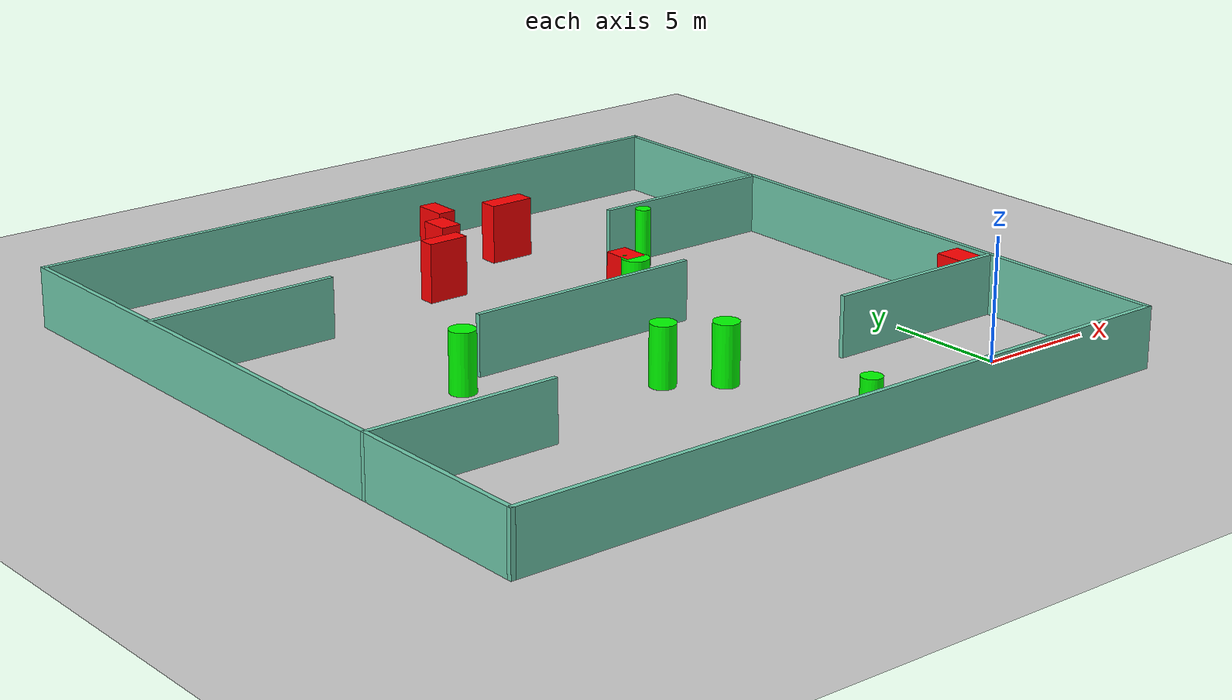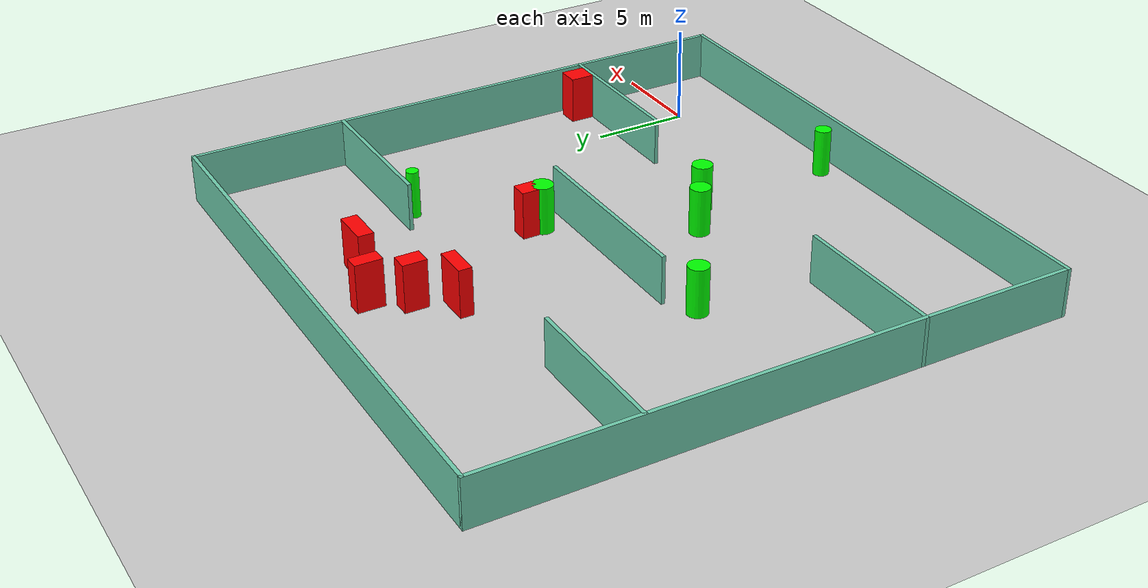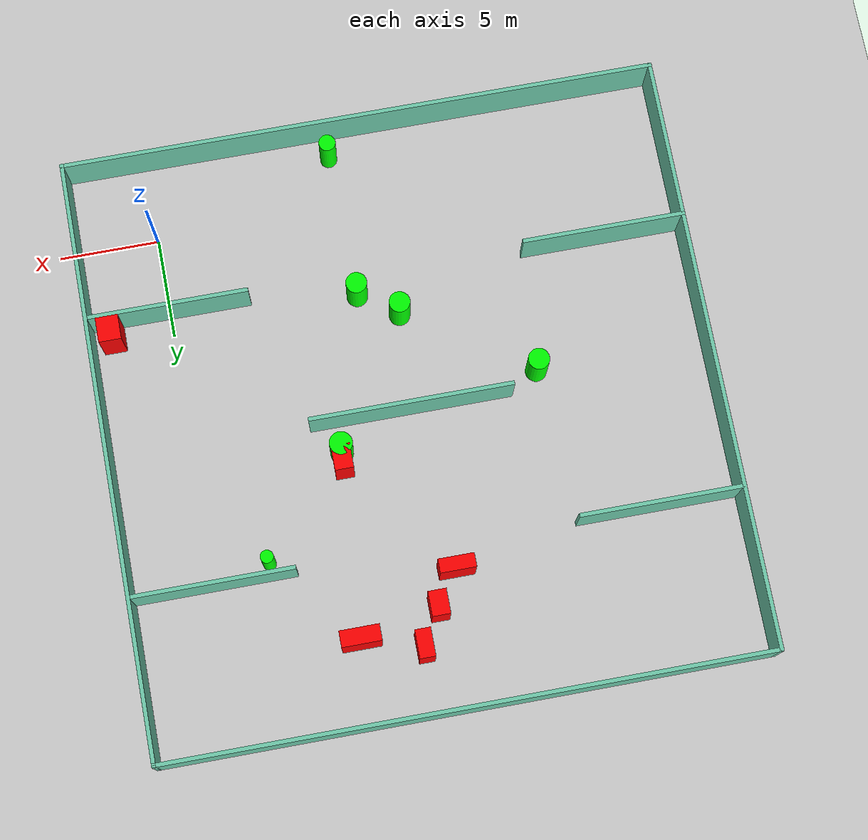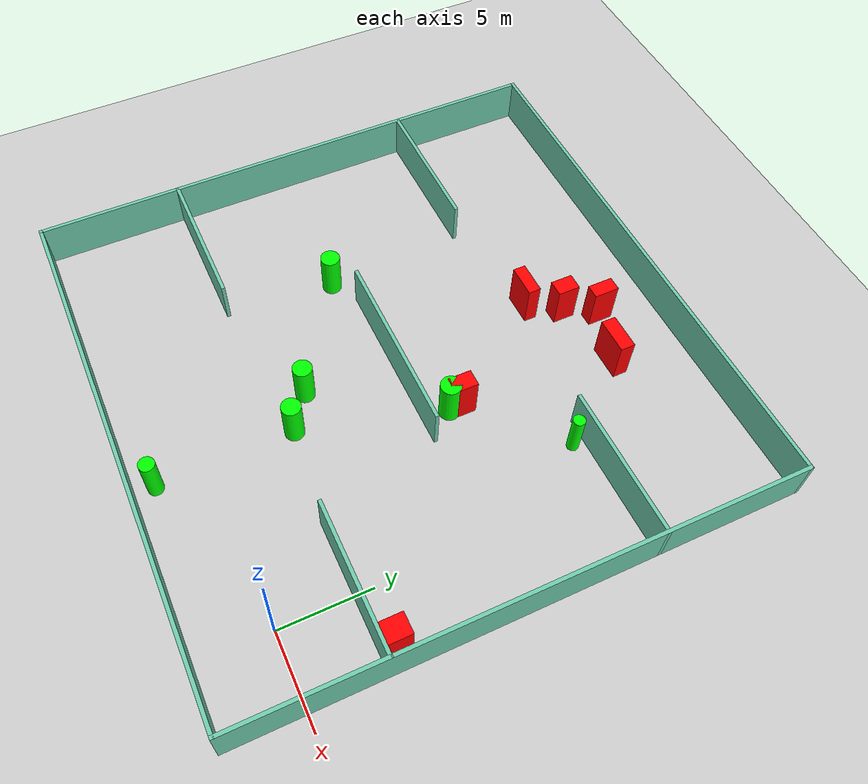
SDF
<sdf version="1.7">
 <world name="default">
  <light name="sun" type="directional">
   <pose>0 0 10 0 -0 0</pose>
   <diffuse>0.8 0.8 0.8 1</diffuse>
   <specular>0.2 0.2 0.2 1</specular>
   <attenuation>
    <range>1000</range>
    <constant>0.9</constant>
    <linear>0.01</linear>
    <quadratic>0.001</quadratic>
   </attenuation>
   <direction>-0.5 0.1 -0.9</direction>
   <spot><inner_angle>0</inner_angle><outer_angle>0</outer_angle><falloff>0</falloff></spot>
  </light>
  <model name="ground_plane">
   <static>1</static>
   <link name="link">
    <collision name="collision">
     <geometry><plane><normal>0 0 1</normal><size>100 100</size></plane></geometry>
     <surface>
      <contact><collide_bitmask>65535</collide_bitmask></contact>
      <friction><ode><mu>100</mu><mu2>50</mu2></ode></friction>
     </surface>
    </collision>
    <visual name="visual">
     <cast_shadows>0</cast_shadows>
     <geometry><plane><normal>0 0 1</normal><size>100 100</size></plane></geometry>
     <material>
      <script><uri>file://media/materials/scripts/gazebo.material</uri><name>Gazebo/Grey</name></script>
     </material>
    </visual>
   </link>
  </model>
  <gravity>0 0 -9.8</gravity>
  <magnetic_field>6e-06 2.3e-05 -4.2e-05</magnetic_field>
  <atmosphere type="adiabatic"/>
  <physics type="ode">
   <max_step_size>0.001</max_step_size>
   <real_time_factor>1</real_time_factor>
   <real_time_update_rate>1000</real_time_update_rate>
  </physics>
  <scene><ambient>0.4 0.4 0.4 1</ambient><background>0.7 0.7 0.7 1</background><shadows>1</shadows></scene>
  <spherical_coordinates>
   <surface_model>EARTH_WGS84</surface_model>
   <latitude_deg>0</latitude_deg>
   <longitude_deg>0</longitude_deg>
   <elevation>0</elevation>
   <heading_deg>0</heading_deg>
  </spherical_coordinates>
  <model name="my_base_walls">
   <link name="Wall_10">
    <collision name="Wall_10_Collision">
     <geometry><box><size>8.2 0.2 2.5</size></box></geometry>
     <pose>0 0 1.25 0 -0 0</pose>
    </collision>
    <visual name="Wall_10_Visual">
     <pose>0 0 1.25 0 -0 0</pose>
     <geometry><box><size>8.2 0.2 2.5</size></box></geometry>
     <material>
      <script><uri>file://media/materials/scripts/gazebo.material</uri><name>Gazebo/Grey</name></script>
      <ambient>0.435294 0.796078 0.67451 1</ambient>
     </material>
     <meta><layer>0</layer></meta>
    </visual>
    <pose>-11 -7 0 0 -0 0</pose>
   </link>
   <link name="Wall_12">
    <collision name="Wall_12_Collision">
     <geometry><box><size>8.2 0.2 2.5</size></box></geometry>
     <pose>0 0 1.25 0 -0 0</pose>
    </collision>
    <visual name="Wall_12_Visual">
     <pose>0 0 1.25 0 -0 0</pose>
     <geometry><box><size>8.2 0.2 2.5</size></box></geometry>
     <material>
      <script><uri>file://media/materials/scripts/gazebo.material</uri><name>Gazebo/Grey</name></script>
      <ambient>0.435294 0.796078 0.67451 1</ambient>
     </material>
     <meta><layer>0</layer></meta>
    </visual>
    <pose>-11 7 0 0 -0 0</pose>
   </link>
   <link name="Wall_14">
    <collision name="Wall_14_Collision">
     <geometry><box><size>8.2 0.2 2.5</size></box></geometry>
     <pose>0 0 1.25 0 -0 0</pose>
    </collision>
    <visual name="Wall_14_Visual">
     <pose>0 0 1.25 0 -0 0</pose>
     <geometry><box><size>8.2 0.2 2.5</size></box></geometry>
     <material>
      <script><uri>file://media/materials/scripts/gazebo.material</uri><name>Gazebo/Grey</name></script>
      <ambient>0.435294 0.796078 0.67451 1</ambient>
     </material>
     <meta><layer>0</layer></meta>
    </visual>
    <pose>11 7 0 0 -0 3.14159</pose>
   </link>
   <link name="Wall_16">
    <collision name="Wall_16_Collision">
     <geometry><box><size>10.2 0.2 2.5</size></box></geometry>
     <pose>0 0 1.25 0 -0 0</pose>
    </collision>
    <visual name="Wall_16_Visual">
     <pose>0 0 1.25 0 -0 0</pose>
     <geometry><box><size>10.2 0.2 2.5</size></box></geometry>
     <material>
      <script><uri>file://media/materials/scripts/gazebo.material</uri><name>Gazebo/Grey</name></script>
      <ambient>0.435294 0.796078 0.67451 1</ambient>
     </material>
     <meta><layer>0</layer></meta>
    </visual>
    <pose>0 0 0 0 -0 3.14159</pose>
   </link>
   <link name="Wall_2">
    <collision name="Wall_2_Collision">
     <geometry><box><size>30.2 0.2 2.5</size></box></geometry>
     <pose>0 0 1.25 0 -0 0</pose>
    </collision>
    <visual name="Wall_2_Visual">
     <pose>0 0 1.25 0 -0 0</pose>
     <geometry><box><size>30.2 0.2 2.5</size></box></geometry>
     <material>
      <script><uri>file://media/materials/scripts/gazebo.material</uri><name>Gazebo/Grey</name></script>
      <ambient>0.435294 0.796078 0.67451 1</ambient>
     </material>
     <meta><layer>0</layer></meta>
    </visual>
    <pose>0 -15 0 0 -0 3.14159</pose>
   </link>
   <link name="Wall_3">
    <collision name="Wall_3_Collision">
     <geometry><box><size>30.2 0.2 2.5</size></box></geometry>
     <pose>0 0 1.25 0 -0 0</pose>
    </collision>
    <visual name="Wall_3_Visual">
     <pose>0 0 1.25 0 -0 0</pose>
     <geometry><box><size>30.2 0.2 2.5</size></box></geometry>
     <material>
      <script><uri>file://media/materials/scripts/gazebo.material</uri><name>Gazebo/Grey</name></script>
      <ambient>0.435294 0.796078 0.67451 1</ambient>
     </material>
     <meta><layer>0</layer></meta>
    </visual>
    <pose>-15 0 0 0 -0 1.5708</pose>
   </link>
   <link name="Wall_4">
    <collision name="Wall_4_Collision">
     <geometry><box><size>30.2 0.2 2.5</size></box></geometry>
     <pose>0 0 1.25 0 -0 0</pose>
    </collision>
    <visual name="Wall_4_Visual">
     <pose>0 0 1.25 0 -0 0</pose>
     <geometry><box><size>30.2 0.2 2.5</size></box></geometry>
     <material>
      <script><uri>file://media/materials/scripts/gazebo.material</uri><name>Gazebo/Grey</name></script>
      <ambient>0.435294 0.796078 0.67451 1</ambient>
     </material>
     <meta><layer>0</layer></meta>
    </visual>
    <pose>0 15 0 0 -0 0</pose>
   </link>
   <link name="Wall_6">
    <collision name="Wall_6_Collision">
     <geometry><box><size>30.2 0.2 2.5</size></box></geometry>
     <pose>0 0 1.25 0 -0 0</pose>
    </collision>
    <visual name="Wall_6_Visual">
     <pose>0 0 1.25 0 -0 0</pose>
     <geometry><box><size>30.2 0.2 2.5</size></box></geometry>
     <material>
      <script><uri>file://media/materials/scripts/gazebo.material</uri><name>Gazebo/Grey</name></script>
      <ambient>0.435294 0.796078 0.67451 1</ambient>
     </material>
     <meta><layer>0</layer></meta>
    </visual>
    <pose>15 0 0 0 -0 1.5708</pose>
   </link>
   <link name="Wall_8">
    <collision name="Wall_8_Collision">
     <geometry><box><size>8.2 0.2 2.5</size></box></geometry>
     <pose>0 0 1.25 0 -0 0</pose>
    </collision>
    <visual name="Wall_8_Visual">
     <pose>0 0 1.25 0 -0 0</pose>
     <geometry><box><size>8.2 0.2 2.5</size></box></geometry>
     <material>
      <script><uri>file://media/materials/scripts/gazebo.material</uri><name>Gazebo/Grey</name></script>
      <ambient>0.435294 0.796078 0.67451 1</ambient>
     </material>
     <meta><layer>0</layer></meta>
    </visual>
    <pose>11 -7 0 0 -0 3.14159</pose>
   </link>
   <static>1</static>
   <pose>-11 11 0 0 -0 0</pose>
  </model>
  <model name="cylinder1">
   <static>1</static>
   <link name="link">
    <inertial>
     <mass>1</mass>
     <inertia><ixx>0.5</ixx><ixy>0</ixy><ixz>0</ixz><iyy>0.5</iyy><iyz>0</iyz><izz>1</izz></inertia>
    </inertial>
    <collision name="collision">
     <geometry><cylinder><radius>0.5279677977447156</radius><length>2.5</length></cylinder></geometry>
    </collision>
    <visual name="visual">
     <geometry><cylinder><radius>0.5279677977447156</radius><length>2.5</length></cylinder></geometry>
     <material>
      <ambient>0 1 0 1</ambient>
      <diffuse>0 1 0 1</diffuse>
      <specular>0.1 0.1 0.1 1</specular>
      <emissive>0 0 0 0</emissive>
     </material>
    </visual>
   </link>
   <pose>-9.409953322341888 4.6237232983008845 1.25 0 0 0</pose>
  </model>
  <model name="cylinder2">
   <static>1</static>
   <link name="link">
    <inertial>
     <mass>1</mass>
     <inertia><ixx>0.5</ixx><ixy>0</ixy><ixz>0</ixz><iyy>0.5</iyy><iyz>0</iyz><izz>1</izz></inertia>
    </inertial>
    <collision name="collision">
     <geometry><cylinder><radius>0.5708406315479275</radius><length>2.5</length></cylinder></geometry>
    </collision>
    <visual name="visual">
     <geometry><cylinder><radius>0.5708406315479275</radius><length>2.5</length></cylinder></geometry>
     <material>
      <ambient>0 1 0 1</ambient>
      <diffuse>0 1 0 1</diffuse>
      <specular>0.1 0.1 0.1 1</specular>
      <emissive>0 0 0 0</emissive>
     </material>
    </visual>
   </link>
   <pose>-7.258871183798753 12.434021978072245 1.25 0 0 0</pose>
  </model>
  <model name="cylinder3">
   <static>1</static>
   <link name="link">
    <inertial>
     <mass>1</mass>
     <inertia><ixx>0.5</ixx><ixy>0</ixy><ixz>0</ixz><iyy>0.5</iyy><iyz>0</iyz><izz>1</izz></inertia>
    </inertial>
    <collision name="collision">
     <geometry><cylinder><radius>0.5257200291387077</radius><length>2.5</length></cylinder></geometry>
    </collision>
    <visual name="visual">
     <geometry><cylinder><radius>0.5257200291387077</radius><length>2.5</length></cylinder></geometry>
     <material>
      <ambient>0 1 0 1</ambient>
      <diffuse>0 1 0 1</diffuse>
      <specular>0.1 0.1 0.1 1</specular>
      <emissive>0 0 0 0</emissive>
     </material>
    </visual>
   </link>
   <pose>-11.331739146015394 5.974783271139026 1.25 0 0 0</pose>
  </model>
  <model name="cylinder4">
   <static>1</static>
   <link name="link">
    <inertial>
     <mass>1</mass>
     <inertia><ixx>0.5</ixx><ixy>0</ixy><ixz>0</ixz><iyy>0.5</iyy><iyz>0</iyz><izz>1</izz></inertia>
    </inertial>
    <collision name="collision">
     <geometry><cylinder><radius>0.3238210304155743</radius><length>2.5</length></cylinder></geometry>
    </collision>
    <visual name="visual">
     <geometry><cylinder><radius>0.3238210304155743</radius><length>2.5</length></cylinder></geometry>
     <material>
      <ambient>0 1 0 1</ambient>
      <diffuse>0 1 0 1</diffuse>
      <specular>0.1 0.1 0.1 1</specular>
      <emissive>0 0 0 0</emissive>
     </material>
    </visual>
   </link>
   <pose>-2.821628535906001 17.261289644048315 1.25 0 0 0</pose>
  </model>
  <model name="cylinder5">
   <static>1</static>
   <link name="link">
    <inertial>
     <mass>1</mass>
     <inertia><ixx>0.5</ixx><ixy>0</ixy><ixz>0</ixz><iyy>0.5</iyy><iyz>0</iyz><izz>1</izz></inertia>
    </inertial>
    <collision name="collision">
     <geometry><cylinder><radius>0.42267156083240653</radius><length>2.5</length></cylinder></geometry>
    </collision>
    <visual name="visual">
     <geometry><cylinder><radius>0.42267156083240653</radius><length>2.5</length></cylinder></geometry>
     <material>
      <ambient>0 1 0 1</ambient>
      <diffuse>0 1 0 1</diffuse>
      <specular>0.1 0.1 0.1 1</specular>
      <emissive>0 0 0 0</emissive>
     </material>
    </visual>
   </link>
   <pose>-9.249918612245411 -2.824711571349397 1.25 0 0 0</pose>
  </model>
  <model name="cylinder6">
   <static>1</static>
   <link name="link">
    <inertial>
     <mass>1</mass>
     <inertia><ixx>0.5</ixx><ixy>0</ixy><ixz>0</ixz><iyy>0.5</iyy><iyz>0</iyz><izz>1</izz></inertia>
    </inertial>
    <collision name="collision">
     <geometry><cylinder><radius>0.5339008984215461</radius><length>2.5</length></cylinder></geometry>
    </collision>
    <visual name="visual">
     <geometry><cylinder><radius>0.5339008984215461</radius><length>2.5</length></cylinder></geometry>
     <material>
      <ambient>0 1 0 1</ambient>
      <diffuse>0 1 0 1</diffuse>
      <specular>0.1 0.1 0.1 1</specular>
      <emissive>0 0 0 0</emissive>
     </material>
    </visual>
   </link>
   <pose>-17.507301537023732 10.047029718391425 1.25 0 0 0</pose>
  </model>
  <model name="box1">
   <static>1</static>
   <link name="link">
    <inertial>
     <mass>1</mass>
     <inertia><ixx>0.083</ixx><ixy>0</ixy><ixz>0</ixz><iyy>0.083</iyy><iyz>0</iyz><izz>0.083</izz></inertia>
    </inertial>
    <collision name="collision">
     <geometry><box><size>1.1207918516206625 1.246244829753832 2.5</size></box></geometry>
    </collision>
    <visual name="visual">
     <geometry><box><size>1.1207918516206625 1.246244829753832 2.5</size></box></geometry>
     <material>
      <ambient>1 0 0 1</ambient>
      <diffuse>1 0 0 1</diffuse>
      <specular>0.1 0.1 0.1 1</specular>
      <emissive>0 0 0 0</emissive>
     </material>
    </visual>
    <sensor name="my_contact" type="contact">
     <contact><collision>box_collision</collision><topic>__default_topic__</topic></contact>
    </sensor>
   </link>
   <pose>2.9593410866411816 4.7190693379088255 1.25 0 0 0</pose>
  </model>
  <model name="box2">
   <static>1</static>
   <link name="link">
    <inertial>
     <mass>1</mass>
     <inertia><ixx>0.083</ixx><ixy>0</ixy><ixz>0</ixz><iyy>0.083</iyy><iyz>0</iyz><izz>0.083</izz></inertia>
    </inertial>
    <collision name="collision">
     <geometry><box><size>0.9246749674089078 1.2819552499331788 2.5</size></box></geometry>
    </collision>
    <visual name="visual">
     <geometry><box><size>0.9246749674089078 1.2819552499331788 2.5</size></box></geometry>
     <material>
      <ambient>1 0 0 1</ambient>
      <diffuse>1 0 0 1</diffuse>
      <specular>0.1 0.1 0.1 1</specular>
      <emissive>0 0 0 0</emissive>
     </material>
    </visual>
    <sensor name="my_contact" type="contact">
     <contact><collision>box_collision</collision><topic>__default_topic__</topic></contact>
    </sensor>
   </link>
   <pose>-7.209889974354116 13.074427592935077 1.25 0 0 0</pose>
  </model>
  <model name="box3">
   <static>1</static>
   <link name="link">
    <inertial>
     <mass>1</mass>
     <inertia><ixx>0.083</ixx><ixy>0</ixy><ixz>0</ixz><iyy>0.083</iyy><iyz>0</iyz><izz>0.083</izz></inertia>
    </inertial>
    <collision name="collision">
     <geometry><box><size>1.969458027105009 0.809854322841483 2.5</size></box></geometry>
    </collision>
    <visual name="visual">
     <geometry><box><size>1.969458027105009 0.809854322841483 2.5</size></box></geometry>
     <material>
      <ambient>1 0 0 1</ambient>
      <diffuse>1 0 0 1</diffuse>
      <specular>0.1 0.1 0.1 1</specular>
      <emissive>0 0 0 0</emissive>
     </material>
    </visual>
    <sensor name="my_contact" type="contact">
     <contact><collision>box_collision</collision><topic>__default_topic__</topic></contact>
    </sensor>
   </link>
   <pose>-6.553116957208422 21.774584909197742 1.25 0 0 0</pose>
  </model>
  <model name="box4">
   <static>1</static>
   <link name="link">
    <inertial>
     <mass>1</mass>
     <inertia><ixx>0.083</ixx><ixy>0</ixy><ixz>0</ixz><iyy>0.083</iyy><iyz>0</iyz><izz>0.083</izz></inertia>
    </inertial>
    <collision name="collision">
     <geometry><box><size>0.9016064234878624 1.2269478467951436 2.5</size></box></geometry>
    </collision>
    <visual name="visual">
     <geometry><box><size>0.9016064234878624 1.2269478467951436 2.5</size></box></geometry>
     <material>
      <ambient>1 0 0 1</ambient>
      <diffuse>1 0 0 1</diffuse>
      <specular>0.1 0.1 0.1 1</specular>
      <emissive>0 0 0 0</emissive>
     </material>
    </visual>
    <sensor name="my_contact" type="contact">
     <contact><collision>box_collision</collision><topic>__default_topic__</topic></contact>
    </sensor>
   </link>
   <pose>-10.511831825942794 20.894133799163416 1.25 0 0 0</pose>
  </model>
  <model name="box5">
   <static>1</static>
   <link name="link">
    <inertial>
     <mass>1</mass>
     <inertia><ixx>0.083</ixx><ixy>0</ixy><ixz>0</ixz><iyy>0.083</iyy><iyz>0</iyz><izz>0.083</izz></inertia>
    </inertial>
    <collision name="collision">
     <geometry><box><size>1.7822288512270488 0.6934174873795539 2.5</size></box></geometry>
    </collision>
    <visual name="visual">
     <geometry><box><size>1.7822288512270488 0.6934174873795539 2.5</size></box></geometry>
     <material>
      <ambient>1 0 0 1</ambient>
      <diffuse>1 0 0 1</diffuse>
      <specular>0.1 0.1 0.1 1</specular>
      <emissive>0 0 0 0</emissive>
     </material>
    </visual>
    <sensor name="my_contact" type="contact">
     <contact><collision>box_collision</collision><topic>__default_topic__</topic></contact>
    </sensor>
   </link>
   <pose>-11.703406138600355 19.190477655843758 1.25 0 0 0</pose>
  </model>
  <model name="box6">
   <static>1</static>
   <link name="link">
    <inertial>
     <mass>1</mass>
     <inertia><ixx>0.083</ixx><ixy>0</ixy><ixz>0</ixz><iyy>0.083</iyy><iyz>0</iyz><izz>0.083</izz></inertia>
    </inertial>
    <collision name="collision">
     <geometry><box><size>0.7788362171868195 1.4022173596112253 2.5</size></box></geometry>
    </collision>
    <visual name="visual">
     <geometry><box><size>0.7788362171868195 1.4022173596112253 2.5</size></box></geometry>
     <material>
      <ambient>1 0 0 1</ambient>
      <diffuse>1 0 0 1</diffuse>
      <specular>0.1 0.1 0.1 1</specular>
      <emissive>0 0 0 0</emissive>
     </material>
    </visual>
    <sensor name="my_contact" type="contact">
     <contact><collision>box_collision</collision><topic>__default_topic__</topic></contact>
    </sensor>
   </link>
   <pose>-9.502791479049705 22.665669898039674 1.25 0 0 0</pose>
  </model>
 </world>
</sdf>
